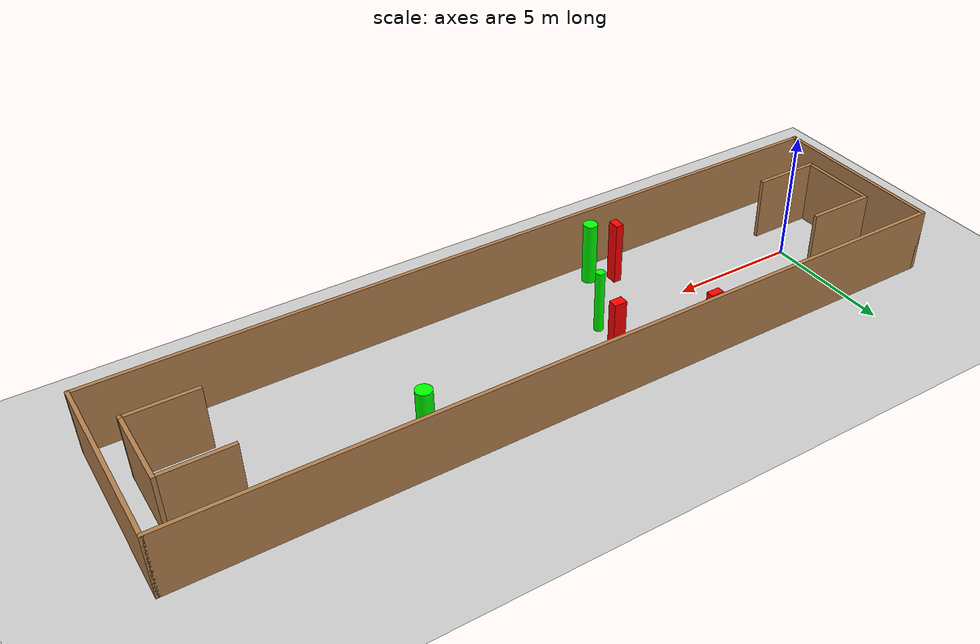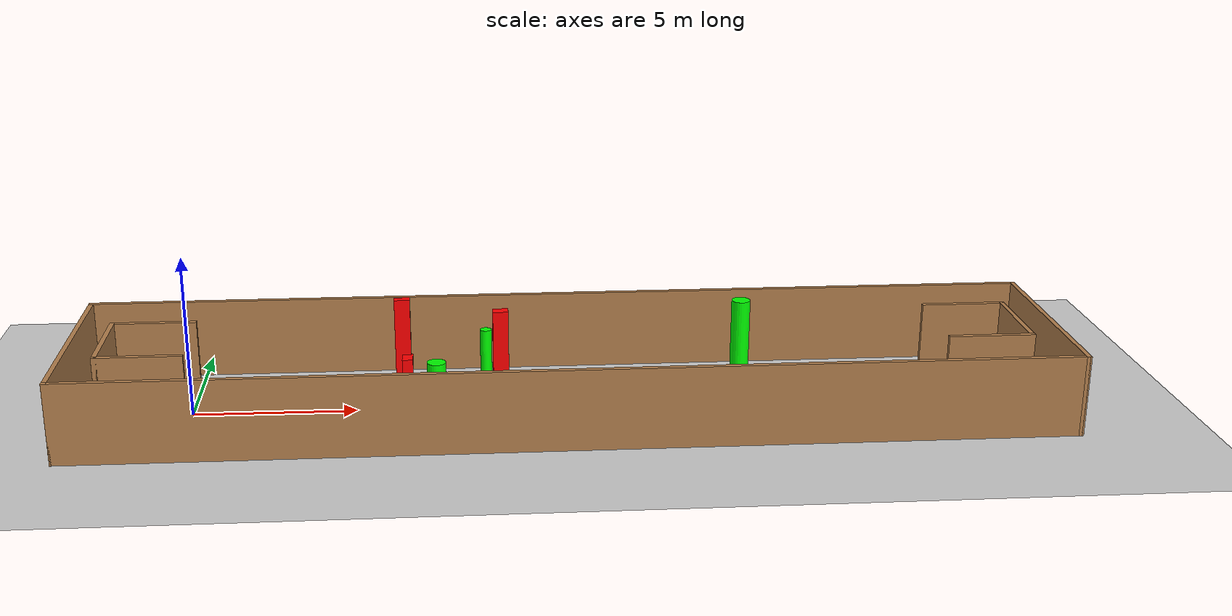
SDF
<sdf version="1.7">
 <world name="default">
  <light name="sun" type="directional">
   <pose>0 0 10 0 -0 0</pose>
   <diffuse>0.8 0.8 0.8 1</diffuse>
   <specular>0.2 0.2 0.2 1</specular>
   <attenuation>
    <range>1000</range>
    <constant>0.9</constant>
    <linear>0.01</linear>
    <quadratic>0.001</quadratic>
   </attenuation>
   <direction>-0.5 0.1 -0.9</direction>
   <spot><inner_angle>0</inner_angle><outer_angle>0</outer_angle><falloff>0</falloff></spot>
  </light>
  <model name="ground_plane">
   <static>1</static>
   <link name="link">
    <collision name="collision">
     <geometry><plane><normal>0 0 1</normal><size>100 100</size></plane></geometry>
     <surface>
      <contact><collide_bitmask>65535</collide_bitmask></contact>
      <friction><ode><mu>100</mu><mu2>50</mu2></ode></friction>
     </surface>
    </collision>
    <visual name="visual">
     <cast_shadows>0</cast_shadows>
     <geometry><plane><normal>0 0 1</normal><size>100 100</size></plane></geometry>
     <material>
      <script><uri>file://media/materials/scripts/gazebo.material</uri><name>Gazebo/Grey</name></script>
     </material>
    </visual>
   </link>
  </model>
  <gravity>0 0 -9.8</gravity>
  <magnetic_field>6e-06 2.3e-05 -4.2e-05</magnetic_field>
  <atmosphere type="adiabatic"/>
  <physics type="ode">
   <max_step_size>0.001</max_step_size>
   <real_time_factor>1</real_time_factor>
   <real_time_update_rate>1000</real_time_update_rate>
  </physics>
  <scene><ambient>0.4 0.4 0.4 1</ambient><background>0.7 0.7 0.7 1</background><shadows>1</shadows></scene>
  <spherical_coordinates>
   <surface_model>EARTH_WGS84</surface_model>
   <latitude_deg>0</latitude_deg>
   <longitude_deg>0</longitude_deg>
   <elevation>0</elevation>
   <heading_deg>0</heading_deg>
  </spherical_coordinates>
  <model name="my_base_walls">
   <link name="Wall_0">
    <collision name="Wall_0_Collision">
     <geometry><box><size>7.15 0.15 2.5</size></box></geometry>
     <pose>0 0 1.25 0 -0 0</pose>
    </collision>
    <visual name="Wall_0_Visual">
     <pose>0 0 1.25 0 -0 0</pose>
     <geometry><box><size>7.15 0.15 2.5</size></box></geometry>
     <material>
      <script><uri>file://media/materials/scripts/gazebo.material</uri><name>Gazebo/Wood</name></script>
      <ambient>1 1 1 1</ambient>
     </material>
     <meta><layer>0</layer></meta>
    </visual>
    <pose>-15 0 0 0 -0 1.5708</pose>
   </link>
   <link name="Wall_10">
    <collision name="Wall_10_Collision">
     <geometry><box><size>2.65 0.15 2.5</size></box></geometry>
     <pose>0 0 1.25 0 -0 0</pose>
    </collision>
    <visual name="Wall_10_Visual">
     <pose>0 0 1.25 0 -0 0</pose>
     <geometry><box><size>2.65 0.15 2.5</size></box></geometry>
     <material>
      <script><uri>file://media/materials/scripts/gazebo.material</uri><name>Gazebo/Wood</name></script>
      <ambient>1 1 1 1</ambient>
     </material>
     <meta><layer>0</layer></meta>
    </visual>
    <pose>-12.75 -1.5 0 0 -0 0</pose>
   </link>
   <link name="Wall_12">
    <collision name="Wall_12_Collision">
     <geometry><box><size>2.65 0.15 2.5</size></box></geometry>
     <pose>0 0 1.25 0 -0 0</pose>
    </collision>
    <visual name="Wall_12_Visual">
     <pose>0 0 1.25 0 -0 0</pose>
     <geometry><box><size>2.65 0.15 2.5</size></box></geometry>
     <material>
      <script><uri>file://media/materials/scripts/gazebo.material</uri><name>Gazebo/Wood</name></script>
      <ambient>1 1 1 1</ambient>
     </material>
     <meta><layer>0</layer></meta>
    </visual>
    <pose>-12.75 1.5 0 0 -0 0</pose>
   </link>
   <link name="Wall_14">
    <collision name="Wall_14_Collision">
     <geometry><box><size>3.15 0.15 2.5</size></box></geometry>
     <pose>0 0 1.25 0 -0 0</pose>
    </collision>
    <visual name="Wall_14_Visual">
     <pose>0 0 1.25 0 -0 0</pose>
     <geometry><box><size>3.15 0.15 2.5</size></box></geometry>
     <material>
      <script><uri>file://media/materials/scripts/gazebo.material</uri><name>Gazebo/Wood</name></script>
      <ambient>1 1 1 1</ambient>
     </material>
     <meta><layer>0</layer></meta>
    </visual>
    <pose>14 0 0 0 -0 -1.5708</pose>
   </link>
   <link name="Wall_15">
    <collision name="Wall_15_Collision">
     <geometry><box><size>2.65 0.15 2.5</size></box></geometry>
     <pose>0 0 1.25 0 -0 0</pose>
    </collision>
    <visual name="Wall_15_Visual">
     <pose>0 0 1.25 0 -0 0</pose>
     <geometry><box><size>2.65 0.15 2.5</size></box></geometry>
     <material>
      <script><uri>file://media/materials/scripts/gazebo.material</uri><name>Gazebo/Wood</name></script>
      <ambient>1 1 1 1</ambient>
     </material>
     <meta><layer>0</layer></meta>
    </visual>
    <pose>12.75 -1.5 0 0 -0 3.14159</pose>
   </link>
   <link name="Wall_17">
    <collision name="Wall_17_Collision">
     <geometry><box><size>2.65 0.15 2.5</size></box></geometry>
     <pose>0 0 1.25 0 -0 0</pose>
    </collision>
    <visual name="Wall_17_Visual">
     <pose>0 0 1.25 0 -0 0</pose>
     <geometry><box><size>2.65 0.15 2.5</size></box></geometry>
     <material>
      <script><uri>file://media/materials/scripts/gazebo.material</uri><name>Gazebo/Wood</name></script>
      <ambient>1 1 1 1</ambient>
     </material>
     <meta><layer>0</layer></meta>
    </visual>
    <pose>12.75 1.5 0 0 -0 3.14159</pose>
   </link>
   <link name="Wall_2">
    <collision name="Wall_2_Collision">
     <geometry><box><size>30.15 0.15 2.5</size></box></geometry>
     <pose>0 0 1.25 0 -0 0</pose>
    </collision>
    <visual name="Wall_2_Visual">
     <pose>0 0 1.25 0 -0 0</pose>
     <geometry><box><size>30.15 0.15 2.5</size></box></geometry>
     <material>
      <script><uri>file://media/materials/scripts/gazebo.material</uri><name>Gazebo/Wood</name></script>
      <ambient>1 1 1 1</ambient>
     </material>
     <meta><layer>0</layer></meta>
    </visual>
    <pose>-0 -3.5 0 0 -0 0</pose>
   </link>
   <link name="Wall_4">
    <collision name="Wall_4_Collision">
     <geometry><box><size>30.15 0.15 2.5</size></box></geometry>
     <pose>0 0 1.25 0 -0 0</pose>
    </collision>
    <visual name="Wall_4_Visual">
     <pose>0 0 1.25 0 -0 0</pose>
     <geometry><box><size>30.15 0.15 2.5</size></box></geometry>
     <material>
      <script><uri>file://media/materials/scripts/gazebo.material</uri><name>Gazebo/Wood</name></script>
      <ambient>1 1 1 1</ambient>
     </material>
     <meta><layer>0</layer></meta>
    </visual>
    <pose>-0 3.5 0 0 -0 0</pose>
   </link>
   <link name="Wall_6">
    <collision name="Wall_6_Collision">
     <geometry><box><size>7.15 0.15 2.5</size></box></geometry>
     <pose>0 0 1.25 0 -0 0</pose>
    </collision>
    <visual name="Wall_6_Visual">
     <pose>0 0 1.25 0 -0 0</pose>
     <geometry><box><size>7.15 0.15 2.5</size></box></geometry>
     <material>
      <script><uri>file://media/materials/scripts/gazebo.material</uri><name>Gazebo/Wood</name></script>
      <ambient>1 1 1 1</ambient>
     </material>
     <meta><layer>0</layer></meta>
    </visual>
    <pose>15 0 0 0 -0 -1.5708</pose>
   </link>
   <link name="Wall_9">
    <collision name="Wall_9_Collision">
     <geometry><box><size>3.15 0.15 2.5</size></box></geometry>
     <pose>0 0 1.25 0 -0 0</pose>
    </collision>
    <visual name="Wall_9_Visual">
     <pose>0 0 1.25 0 -0 0</pose>
     <geometry><box><size>3.15 0.15 2.5</size></box></geometry>
     <material>
      <script><uri>file://media/materials/scripts/gazebo.material</uri><name>Gazebo/Wood</name></script>
      <ambient>1 1 1 1</ambient>
     </material>
     <meta><layer>0</layer></meta>
    </visual>
    <pose>-14 0 0 0 -0 -1.5708</pose>
   </link>
   <static>1</static>
   <pose>11.5 0 0 0 -0 0</pose>
  </model>
  <model name="cylinder1">
   <static>1</static>
   <link name="link">
    <inertial>
     <mass>1</mass>
     <inertia><ixx>0.5</ixx><ixy>0</ixy><ixz>0</ixz><iyy>0.5</iyy><iyz>0</iyz><izz>1</izz></inertia>
    </inertial>
    <collision name="collision">
     <geometry><cylinder><radius>0.17659943451354349</radius><length>2.5</length></cylinder></geometry>
    </collision>
    <visual name="visual">
     <geometry><cylinder><radius>0.17659943451354349</radius><length>2.5</length></cylinder></geometry>
     <material>
      <ambient>0 1 0 1</ambient>
      <diffuse>0 1 0 1</diffuse>
      <specular>0.1 0.1 0.1 1</specular>
      <emissive>0 0 0 0</emissive>
     </material>
    </visual>
   </link>
   <pose>8.979995262587455 0.1273452287295136 1.25 0 0 0</pose>
  </model>
  <model name="cylinder2">
   <static>1</static>
   <link name="link">
    <inertial>
     <mass>1</mass>
     <inertia><ixx>0.5</ixx><ixy>0</ixy><ixz>0</ixz><iyy>0.5</iyy><iyz>0</iyz><izz>1</izz></inertia>
    </inertial>
    <collision name="collision">
     <geometry><cylinder><radius>0.2974633201182549</radius><length>2.5</length></cylinder></geometry>
    </collision>
    <visual name="visual">
     <geometry><cylinder><radius>0.2974633201182549</radius><length>2.5</length></cylinder></geometry>
     <material>
      <ambient>0 1 0 1</ambient>
      <diffuse>0 1 0 1</diffuse>
      <specular>0.1 0.1 0.1 1</specular>
      <emissive>0 0 0 0</emissive>
     </material>
    </visual>
   </link>
   <pose>17.23038690142571 2.351272932772705 1.25 0 0 0</pose>
  </model>
  <model name="cylinder3">
   <static>1</static>
   <link name="link">
    <inertial>
     <mass>1</mass>
     <inertia><ixx>0.5</ixx><ixy>0</ixy><ixz>0</ixz><iyy>0.5</iyy><iyz>0</iyz><izz>1</izz></inertia>
    </inertial>
    <collision name="collision">
     <geometry><cylinder><radius>0.27539973871161366</radius><length>2.5</length></cylinder></geometry>
    </collision>
    <visual name="visual">
     <geometry><cylinder><radius>0.27539973871161366</radius><length>2.5</length></cylinder></geometry>
     <material>
      <ambient>0 1 0 1</ambient>
      <diffuse>0 1 0 1</diffuse>
      <specular>0.1 0.1 0.1 1</specular>
      <emissive>0 0 0 0</emissive>
     </material>
    </visual>
   </link>
   <pose>7.483373756675649 -2.6259425665288143 1.25 0 0 0</pose>
  </model>
  <model name="box1">
   <static>1</static>
   <link name="link">
    <inertial>
     <mass>1</mass>
     <inertia><ixx>0.083</ixx><ixy>0</ixy><ixz>0</ixz><iyy>0.083</iyy><iyz>0</iyz><izz>0.083</izz></inertia>
    </inertial>
    <collision name="collision">
     <geometry><box><size>0.4901908647912539 0.3578719459112301 2.5</size></box></geometry>
    </collision>
    <visual name="visual">
     <geometry><box><size>0.4901908647912539 0.3578719459112301 2.5</size></box></geometry>
     <material>
      <ambient>1 0 0 1</ambient>
      <diffuse>1 0 0 1</diffuse>
      <specular>0.1 0.1 0.1 1</specular>
      <emissive>0 0 0 0</emissive>
     </material>
    </visual>
    <sensor name="my_contact" type="contact">
     <contact><collision>box_collision</collision><topic>__default_topic__</topic></contact>
    </sensor>
   </link>
   <pose>9.483555776965424 1.8765963463884088 1.25 0 0 0</pose>
  </model>
  <model name="box2">
   <static>1</static>
   <link name="link">
    <inertial>
     <mass>1</mass>
     <inertia><ixx>0.083</ixx><ixy>0</ixy><ixz>0</ixz><iyy>0.083</iyy><iyz>0</iyz><izz>0.083</izz></inertia>
    </inertial>
    <collision name="collision">
     <geometry><box><size>0.5027008926205457 0.2856620925785117 2.5</size></box></geometry>
    </collision>
    <visual name="visual">
     <geometry><box><size>0.5027008926205457 0.2856620925785117 2.5</size></box></geometry>
     <material>
      <ambient>1 0 0 1</ambient>
      <diffuse>1 0 0 1</diffuse>
      <specular>0.1 0.1 0.1 1</specular>
      <emissive>0 0 0 0</emissive>
     </material>
    </visual>
    <sensor name="my_contact" type="contact">
     <contact><collision>box_collision</collision><topic>__default_topic__</topic></contact>
    </sensor>
   </link>
   <pose>6.362135006790387 3.240108765495278 1.25 0 0 0</pose>
  </model>
  <model name="box3">
   <static>1</static>
   <link name="link">
    <inertial>
     <mass>1</mass>
     <inertia><ixx>0.083</ixx><ixy>0</ixy><ixz>0</ixz><iyy>0.083</iyy><iyz>0</iyz><izz>0.083</izz></inertia>
    </inertial>
    <collision name="collision">
     <geometry><box><size>0.31063853675676656 0.47875865607333956 2.5</size></box></geometry>
    </collision>
    <visual name="visual">
     <geometry><box><size>0.31063853675676656 0.47875865607333956 2.5</size></box></geometry>
     <material>
      <ambient>1 0 0 1</ambient>
      <diffuse>1 0 0 1</diffuse>
      <specular>0.1 0.1 0.1 1</specular>
      <emissive>0 0 0 0</emissive>
     </material>
    </visual>
    <sensor name="my_contact" type="contact">
     <contact><collision>box_collision</collision><topic>__default_topic__</topic></contact>
    </sensor>
   </link>
   <pose>6.640190043412721 -2.1544024412515883 1.25 0 0 0</pose>
  </model>
 </world>
</sdf>
